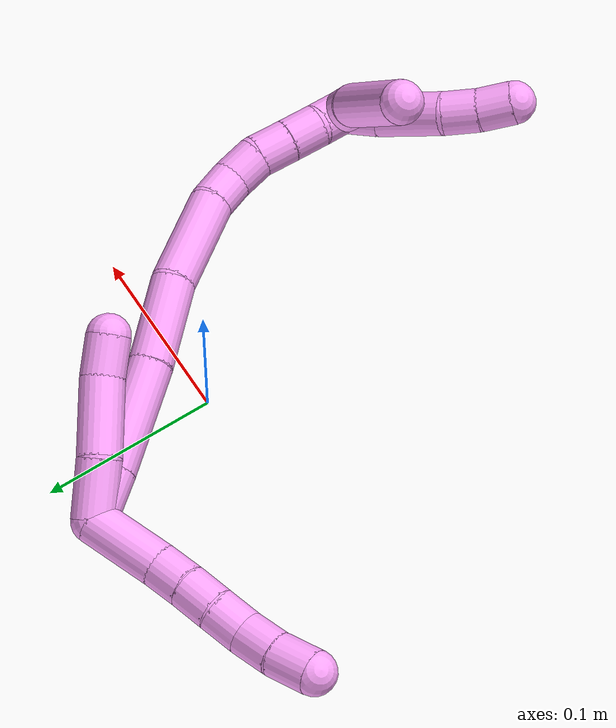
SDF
<sdf version="1.7">
 <world name="default">
  <model name="4">
   <static>0</static>
   <link name="4">
    <collision name="collision-cylinder-e_1_2_8">
     <pose>-0.018552 -0.007982 0.008276 0.767268 -1.01596 -0.442071</pose>
     <geometry><cylinder><radius>0.0125</radius><length>0.043652</length></cylinder></geometry>
     <surface>
      <friction><ode><mu>1.16</mu><mu2>1.16</mu2><slip1>0</slip1><slip2>0</slip2></ode></friction>
      <contact><ode><kp>1e+06</kp><kd>1</kd><max_vel>0</max_vel><min_depth>0.001</min_depth></ode></contact>
     </surface>
    </collision>
    <visual name="visual-cylinder-e_1_2_8">
     <pose>-0.018552 -0.007982 0.008276 0.767268 -1.01596 -0.442071</pose>
     <geometry><cylinder><radius>0.0125</radius><length>0.043652</length></cylinder></geometry>
     <material><ambient>1 0.65098 0.996078 1</ambient></material>
    </visual>
    <collision name="collision-cylinder-e_2_8_9">
     <pose>-0.045405 -0.018593 0.021738 0.469392 -0.959811 -0.247628</pose>
     <geometry><cylinder><radius>0.0125</radius><length>0.02027</length></cylinder></geometry>
     <surface>
      <friction><ode><mu>1.16</mu><mu2>1.16</mu2><slip1>0</slip1><slip2>0</slip2></ode></friction>
      <contact><ode><kp>1e+06</kp><kd>1</kd><max_vel>0</max_vel><min_depth>0.001</min_depth></ode></contact>
     </surface>
    </collision>
    <visual name="visual-cylinder-e_2_8_9">
     <pose>-0.045405 -0.018593 0.021738 0.469392 -0.959811 -0.247628</pose>
     <geometry><cylinder><radius>0.0125</radius><length>0.02027</length></cylinder></geometry>
     <material><ambient>1 0.65098 0.996078 1</ambient></material>
    </visual>
    <collision name="collision-cylinder-e_3_9_10">
     <pose>-0.062344 -0.02381 0.031508 0.513701 -1.02344 -0.292907</pose>
     <geometry><cylinder><radius>0.0125</radius><length>0.02023</length></cylinder></geometry>
     <surface>
      <friction><ode><mu>1.16</mu><mu2>1.16</mu2><slip1>0</slip1><slip2>0</slip2></ode></friction>
      <contact><ode><kp>1e+06</kp><kd>1</kd><max_vel>0</max_vel><min_depth>0.001</min_depth></ode></contact>
     </surface>
    </collision>
    <visual name="visual-cylinder-e_3_9_10">
     <pose>-0.062344 -0.02381 0.031508 0.513701 -1.02344 -0.292907</pose>
     <geometry><cylinder><radius>0.0125</radius><length>0.02023</length></cylinder></geometry>
     <material><ambient>1 0.65098 0.996078 1</ambient></material>
    </visual>
    <collision name="collision-cylinder-e_4_10_11">
     <pose>-0.079951 -0.029507 0.039702 0.711345 -1.08256 -0.439423</pose>
     <geometry><cylinder><radius>0.0125</radius><length>0.020312</length></cylinder></geometry>
     <surface>
      <friction><ode><mu>1.16</mu><mu2>1.16</mu2><slip1>0</slip1><slip2>0</slip2></ode></friction>
      <contact><ode><kp>1e+06</kp><kd>1</kd><max_vel>0</max_vel><min_depth>0.001</min_depth></ode></contact>
     </surface>
    </collision>
    <visual name="visual-cylinder-e_4_10_11">
     <pose>-0.079951 -0.029507 0.039702 0.711345 -1.08256 -0.439423</pose>
     <geometry><cylinder><radius>0.0125</radius><length>0.020312</length></cylinder></geometry>
     <material><ambient>1 0.65098 0.996078 1</ambient></material>
    </visual>
    <collision name="collision-cylinder-e_5_11_12">
     <pose>-0.097398 -0.035386 0.049879 0.398901 -0.871661 -0.187717</pose>
     <geometry><cylinder><radius>0.0125</radius><length>0.022154</length></cylinder></geometry>
     <surface>
      <friction><ode><mu>1.16</mu><mu2>1.16</mu2><slip1>0</slip1><slip2>0</slip2></ode></friction>
      <contact><ode><kp>1e+06</kp><kd>1</kd><max_vel>0</max_vel><min_depth>0.001</min_depth></ode></contact>
     </surface>
    </collision>
    <visual name="visual-cylinder-e_5_11_12">
     <pose>-0.097398 -0.035386 0.049879 0.398901 -0.871661 -0.187717</pose>
     <geometry><cylinder><radius>0.0125</radius><length>0.022154</length></cylinder></geometry>
     <material><ambient>1 0.65098 0.996078 1</ambient></material>
    </visual>
    <collision name="collision-cylinder-e_6_12_6">
     <pose>-0.11413 -0.042366 0.063577 0.533617 -0.783809 -0.224968</pose>
     <geometry><cylinder><radius>0.0125</radius><length>0.023382</length></cylinder></geometry>
     <surface>
      <friction><ode><mu>1.16</mu><mu2>1.16</mu2><slip1>0</slip1><slip2>0</slip2></ode></friction>
      <contact><ode><kp>1e+06</kp><kd>1</kd><max_vel>0</max_vel><min_depth>0.001</min_depth></ode></contact>
     </surface>
    </collision>
    <visual name="visual-cylinder-e_6_12_6">
     <pose>-0.11413 -0.042366 0.063577 0.533617 -0.783809 -0.224968</pose>
     <geometry><cylinder><radius>0.0125</radius><length>0.023382</length></cylinder></geometry>
     <material><ambient>1 0.65098 0.996078 1</ambient></material>
    </visual>
    <collision name="collision-cylinder-e_1_2_13">
     <pose>0.013942 -0.008362 0.002988 1.22766 1.00365 0.73783</pose>
     <geometry><cylinder><radius>0.0125</radius><length>0.033059</length></cylinder></geometry>
     <surface>
      <friction><ode><mu>1.16</mu><mu2>1.16</mu2><slip1>0</slip1><slip2>0</slip2></ode></friction>
      <contact><ode><kp>1e+06</kp><kd>1</kd><max_vel>0</max_vel><min_depth>0.001</min_depth></ode></contact>
     </surface>
    </collision>
    <visual name="visual-cylinder-e_1_2_13">
     <pose>0.013942 -0.008362 0.002988 1.22766 1.00365 0.73783</pose>
     <geometry><cylinder><radius>0.0125</radius><length>0.033059</length></cylinder></geometry>
     <material><ambient>1 0.65098 0.996078 1</ambient></material>
    </visual>
    <collision name="collision-cylinder-e_2_13_14">
     <pose>0.046835 -0.02777 0.005819 1.58495 1.04305 1.05532</pose>
     <geometry><cylinder><radius>0.0125</radius><length>0.043872</length></cylinder></geometry>
     <surface>
      <friction><ode><mu>1.16</mu><mu2>1.16</mu2><slip1>0</slip1><slip2>0</slip2></ode></friction>
      <contact><ode><kp>1e+06</kp><kd>1</kd><max_vel>0</max_vel><min_depth>0.001</min_depth></ode></contact>
     </surface>
    </collision>
    <visual name="visual-cylinder-e_2_13_14">
     <pose>0.046835 -0.02777 0.005819 1.58495 1.04305 1.05532</pose>
     <geometry><cylinder><radius>0.0125</radius><length>0.043872</length></cylinder></geometry>
     <material><ambient>1 0.65098 0.996078 1</ambient></material>
    </visual>
    <collision name="collision-cylinder-e_3_14_5">
     <pose>0.0752 -0.045257 0.007374 1.31115 0.954733 0.757214</pose>
     <geometry><cylinder><radius>0.0125</radius><length>0.023069</length></cylinder></geometry>
     <surface>
      <friction><ode><mu>1.16</mu><mu2>1.16</mu2><slip1>0</slip1><slip2>0</slip2></ode></friction>
      <contact><ode><kp>1e+06</kp><kd>1</kd><max_vel>0</max_vel><min_depth>0.001</min_depth></ode></contact>
     </surface>
    </collision>
    <visual name="visual-cylinder-e_3_14_5">
     <pose>0.0752 -0.045257 0.007374 1.31115 0.954733 0.757214</pose>
     <geometry><cylinder><radius>0.0125</radius><length>0.023069</length></cylinder></geometry>
     <material><ambient>1 0.65098 0.996078 1</ambient></material>
    </visual>
    <collision name="collision-cylinder-e_1_2_15">
     <pose>0.009557 -0.011566 -0.001199 1.67406 0.687963 0.756296</pose>
     <geometry><cylinder><radius>0.0125</radius><length>0.030102</length></cylinder></geometry>
     <surface>
      <friction><ode><mu>1.16</mu><mu2>1.16</mu2><slip1>0</slip1><slip2>0</slip2></ode></friction>
      <contact><ode><kp>1e+06</kp><kd>1</kd><max_vel>0</max_vel><min_depth>0.001</min_depth></ode></contact>
     </surface>
    </collision>
    <visual name="visual-cylinder-e_1_2_15">
     <pose>0.009557 -0.011566 -0.001199 1.67406 0.687963 0.756296</pose>
     <geometry><cylinder><radius>0.0125</radius><length>0.030102</length></cylinder></geometry>
     <material><ambient>1 0.65098 0.996078 1</ambient></material>
    </visual>
    <collision name="collision-cylinder-e_2_15_16">
     <pose>0.040429 -0.046807 -0.004039 1.64002 0.731778 0.779267</pose>
     <geometry><cylinder><radius>0.0125</radius><length>0.0638</length></cylinder></geometry>
     <surface>
      <friction><ode><mu>1.16</mu><mu2>1.16</mu2><slip1>0</slip1><slip2>0</slip2></ode></friction>
      <contact><ode><kp>1e+06</kp><kd>1</kd><max_vel>0</max_vel><min_depth>0.001</min_depth></ode></contact>
     </surface>
    </collision>
    <visual name="visual-cylinder-e_2_15_16">
     <pose>0.040429 -0.046807 -0.004039 1.64002 0.731778 0.779267</pose>
     <geometry><cylinder><radius>0.0125</radius><length>0.0638</length></cylinder></geometry>
     <material><ambient>1 0.65098 0.996078 1</ambient></material>
    </visual>
    <collision name="collision-cylinder-e_3_16_17">
     <pose>0.079609 -0.087979 -0.007869 1.69524 0.791962 0.884642</pose>
     <geometry><cylinder><radius>0.0125</radius><length>0.050201</length></cylinder></geometry>
     <surface>
      <friction><ode><mu>1.16</mu><mu2>1.16</mu2><slip1>0</slip1><slip2>0</slip2></ode></friction>
      <contact><ode><kp>1e+06</kp><kd>1</kd><max_vel>0</max_vel><min_depth>0.001</min_depth></ode></contact>
     </surface>
    </collision>
    <visual name="visual-cylinder-e_3_16_17">
     <pose>0.079609 -0.087979 -0.007869 1.69524 0.791962 0.884642</pose>
     <geometry><cylinder><radius>0.0125</radius><length>0.050201</length></cylinder></geometry>
     <material><ambient>1 0.65098 0.996078 1</ambient></material>
    </visual>
    <collision name="collision-cylinder-e_4_17_18">
     <pose>0.113224 -0.12778 -0.01453 1.76869 0.605556 0.728459</pose>
     <geometry><cylinder><radius>0.0125</radius><length>0.05534</length></cylinder></geometry>
     <surface>
      <friction><ode><mu>1.16</mu><mu2>1.16</mu2><slip1>0</slip1><slip2>0</slip2></ode></friction>
      <contact><ode><kp>1e+06</kp><kd>1</kd><max_vel>0</max_vel><min_depth>0.001</min_depth></ode></contact>
     </surface>
    </collision>
    <visual name="visual-cylinder-e_4_17_18">
     <pose>0.113224 -0.12778 -0.01453 1.76869 0.605556 0.728459</pose>
     <geometry><cylinder><radius>0.0125</radius><length>0.05534</length></cylinder></geometry>
     <material><ambient>1 0.65098 0.996078 1</ambient></material>
    </visual>
    <collision name="collision-cylinder-e_5_18_19">
     <pose>0.1327 -0.159399 -0.020739 1.75511 0.3747 0.448682</pose>
     <geometry><cylinder><radius>0.0125</radius><length>0.020361</length></cylinder></geometry>
     <surface>
      <friction><ode><mu>1.16</mu><mu2>1.16</mu2><slip1>0</slip1><slip2>0</slip2></ode></friction>
      <contact><ode><kp>1e+06</kp><kd>1</kd><max_vel>0</max_vel><min_depth>0.001</min_depth></ode></contact>
     </surface>
    </collision>
    <visual name="visual-cylinder-e_5_18_19">
     <pose>0.1327 -0.159399 -0.020739 1.75511 0.3747 0.448682</pose>
     <geometry><cylinder><radius>0.0125</radius><length>0.020361</length></cylinder></geometry>
     <material><ambient>1 0.65098 0.996078 1</ambient></material>
    </visual>
    <collision name="collision-cylinder-e_6_19_20">
     <pose>0.139232 -0.178199 -0.020994 1.4159 0.284376 0.243854</pose>
     <geometry><cylinder><radius>0.0125</radius><length>0.020005</length></cylinder></geometry>
     <surface>
      <friction><ode><mu>1.16</mu><mu2>1.16</mu2><slip1>0</slip1><slip2>0</slip2></ode></friction>
      <contact><ode><kp>1e+06</kp><kd>1</kd><max_vel>0</max_vel><min_depth>0.001</min_depth></ode></contact>
     </surface>
    </collision>
    <visual name="visual-cylinder-e_6_19_20">
     <pose>0.139232 -0.178199 -0.020994 1.4159 0.284376 0.243854</pose>
     <geometry><cylinder><radius>0.0125</radius><length>0.020005</length></cylinder></geometry>
     <material><ambient>1 0.65098 0.996078 1</ambient></material>
    </visual>
    <collision name="collision-cylinder-e_7_20_21">
     <pose>0.142273 -0.197697 -0.018288 1.44907 0.023223 0.020555</pose>
     <geometry><cylinder><radius>0.0125</radius><length>0.020181</length></cylinder></geometry>
     <surface>
      <friction><ode><mu>1.16</mu><mu2>1.16</mu2><slip1>0</slip1><slip2>0</slip2></ode></friction>
      <contact><ode><kp>1e+06</kp><kd>1</kd><max_vel>0</max_vel><min_depth>0.001</min_depth></ode></contact>
     </surface>
    </collision>
    <visual name="visual-cylinder-e_7_20_21">
     <pose>0.142273 -0.197697 -0.018288 1.44907 0.023223 0.020555</pose>
     <geometry><cylinder><radius>0.0125</radius><length>0.020181</length></cylinder></geometry>
     <material><ambient>1 0.65098 0.996078 1</ambient></material>
    </visual>
    <collision name="collision-cylinder-e_8_21_22">
     <pose>0.142854 -0.217669 -0.01616 1.48032 0.034643 0.031643</pose>
     <geometry><cylinder><radius>0.0125</radius><length>0.020011</length></cylinder></geometry>
     <surface>
      <friction><ode><mu>1.16</mu><mu2>1.16</mu2><slip1>0</slip1><slip2>0</slip2></ode></friction>
      <contact><ode><kp>1e+06</kp><kd>1</kd><max_vel>0</max_vel><min_depth>0.001</min_depth></ode></contact>
     </surface>
    </collision>
    <visual name="visual-cylinder-e_8_21_22">
     <pose>0.142854 -0.217669 -0.01616 1.48032 0.034643 0.031643</pose>
     <geometry><cylinder><radius>0.0125</radius><length>0.020011</length></cylinder></geometry>
     <material><ambient>1 0.65098 0.996078 1</ambient></material>
    </visual>
    <collision name="collision-cylinder-e_9_22_1">
     <pose>0.143913 -0.237501 -0.016676 1.71358 0.071348 0.082327</pose>
     <geometry><cylinder><radius>0.0125</radius><length>0.020001</length></cylinder></geometry>
     <surface>
      <friction><ode><mu>1.16</mu><mu2>1.16</mu2><slip1>0</slip1><slip2>0</slip2></ode></friction>
      <contact><ode><kp>1e+06</kp><kd>1</kd><max_vel>0</max_vel><min_depth>0.001</min_depth></ode></contact>
     </surface>
    </collision>
    <visual name="visual-cylinder-e_9_22_1">
     <pose>0.143913 -0.237501 -0.016676 1.71358 0.071348 0.082327</pose>
     <geometry><cylinder><radius>0.0125</radius><length>0.020001</length></cylinder></geometry>
     <material><ambient>1 0.65098 0.996078 1</ambient></material>
    </visual>
    <collision name="collision-cylinder-e_1_1_23">
     <pose>0.138992 -0.25489 -0.014032 1.07518 -0.583004 -0.35401</pose>
     <geometry><cylinder><radius>0.0125</radius><length>0.020467</length></cylinder></geometry>
     <surface>
      <friction><ode><mu>1.16</mu><mu2>1.16</mu2><slip1>0</slip1><slip2>0</slip2></ode></friction>
      <contact><ode><kp>1e+06</kp><kd>1</kd><max_vel>0</max_vel><min_depth>0.001</min_depth></ode></contact>
     </surface>
    </collision>
    <visual name="visual-cylinder-e_1_1_23">
     <pose>0.138992 -0.25489 -0.014032 1.07518 -0.583004 -0.35401</pose>
     <geometry><cylinder><radius>0.0125</radius><length>0.020467</length></cylinder></geometry>
     <material><ambient>1 0.65098 0.996078 1</ambient></material>
    </visual>
    <collision name="collision-cylinder-e_2_23_24">
     <pose>0.124556 -0.27457 0.002361 0.778672 -0.470138 -0.195892</pose>
     <geometry><cylinder><radius>0.0125</radius><length>0.038859</length></cylinder></geometry>
     <surface>
      <friction><ode><mu>1.16</mu><mu2>1.16</mu2><slip1>0</slip1><slip2>0</slip2></ode></friction>
      <contact><ode><kp>1e+06</kp><kd>1</kd><max_vel>0</max_vel><min_depth>0.001</min_depth></ode></contact>
     </surface>
    </collision>
    <visual name="visual-cylinder-e_2_23_24">
     <pose>0.124556 -0.27457 0.002361 0.778672 -0.470138 -0.195892</pose>
     <geometry><cylinder><radius>0.0125</radius><length>0.038859</length></cylinder></geometry>
     <material><ambient>1 0.65098 0.996078 1</ambient></material>
    </visual>
    <collision name="collision-cylinder-e_3_24_25">
     <pose>0.111724 -0.294736 0.019786 1.00374 -0.401803 -0.222574</pose>
     <geometry><cylinder><radius>0.0125</radius><length>0.020611</length></cylinder></geometry>
     <surface>
      <friction><ode><mu>1.16</mu><mu2>1.16</mu2><slip1>0</slip1><slip2>0</slip2></ode></friction>
      <contact><ode><kp>1e+06</kp><kd>1</kd><max_vel>0</max_vel><min_depth>0.001</min_depth></ode></contact>
     </surface>
    </collision>
    <visual name="visual-cylinder-e_3_24_25">
     <pose>0.111724 -0.294736 0.019786 1.00374 -0.401803 -0.222574</pose>
     <geometry><cylinder><radius>0.0125</radius><length>0.020611</length></cylinder></geometry>
     <material><ambient>1 0.65098 0.996078 1</ambient></material>
    </visual>
    <collision name="collision-cylinder-e_4_25_4">
     <pose>0.104928 -0.310712 0.0303 0.973961 -0.279362 -0.148622</pose>
     <geometry><cylinder><radius>0.0125</radius><length>0.020062</length></cylinder></geometry>
     <surface>
      <friction><ode><mu>1.16</mu><mu2>1.16</mu2><slip1>0</slip1><slip2>0</slip2></ode></friction>
      <contact><ode><kp>1e+06</kp><kd>1</kd><max_vel>0</max_vel><min_depth>0.001</min_depth></ode></contact>
     </surface>
    </collision>
    <visual name="visual-cylinder-e_4_25_4">
     <pose>0.104928 -0.310712 0.0303 0.973961 -0.279362 -0.148622</pose>
     <geometry><cylinder><radius>0.0125</radius><length>0.020062</length></cylinder></geometry>
     <material><ambient>1 0.65098 0.996078 1</ambient></material>
    </visual>
    <collision name="collision-cylinder-e_1_1_26">
     <pose>0.143071 -0.243946 -0.002564 -0.217247 -0.09746 0.010637</pose>
     <geometry><cylinder><radius>0.0125</radius><length>0.031961</length></cylinder></geometry>
     <surface>
      <friction><ode><mu>1.16</mu><mu2>1.16</mu2><slip1>0</slip1><slip2>0</slip2></ode></friction>
      <contact><ode><kp>1e+06</kp><kd>1</kd><max_vel>0</max_vel><min_depth>0.001</min_depth></ode></contact>
     </surface>
    </collision>
    <visual name="visual-cylinder-e_1_1_26">
     <pose>0.143071 -0.243946 -0.002564 -0.217247 -0.09746 0.010637</pose>
     <geometry><cylinder><radius>0.0125</radius><length>0.031961</length></cylinder></geometry>
     <material><ambient>1 0.65098 0.996078 1</ambient></material>
    </visual>
    <collision name="collision-cylinder-e_2_26_3">
     <pose>0.132829 -0.238375 0.045788 -0.065205 -0.258207 0.008468</pose>
     <geometry><cylinder><radius>0.0125</radius><length>0.068039</length></cylinder></geometry>
     <surface>
      <friction><ode><mu>1.16</mu><mu2>1.16</mu2><slip1>0</slip1><slip2>0</slip2></ode></friction>
      <contact><ode><kp>1e+06</kp><kd>1</kd><max_vel>0</max_vel><min_depth>0.001</min_depth></ode></contact>
     </surface>
    </collision>
    <visual name="visual-cylinder-e_2_26_3">
     <pose>0.132829 -0.238375 0.045788 -0.065205 -0.258207 0.008468</pose>
     <geometry><cylinder><radius>0.0125</radius><length>0.068039</length></cylinder></geometry>
     <material><ambient>1 0.65098 0.996078 1</ambient></material>
    </visual>
    <collision name="collision-sphere-3">
     <pose>0.124143 -0.236232 0.07861 0 -0 0</pose>
     <geometry><sphere><radius>0.0125</radius></sphere></geometry>
     <surface>
      <friction><ode><mu>1.16</mu><mu2>1.16</mu2><slip1>0</slip1><slip2>0</slip2></ode></friction>
      <contact><ode><kp>1e+06</kp><kd>1</kd><max_vel>0</max_vel><min_depth>0.001</min_depth></ode></contact>
     </surface>
    </collision>
    <visual name="visual-sphere-3">
     <pose>0.124143 -0.236232 0.07861 0 -0 0</pose>
     <geometry><sphere><radius>0.0125</radius></sphere></geometry>
     <material><ambient>1 0.65098 0.996078 1</ambient></material>
    </visual>
    <collision name="collision-sphere-26">
     <pose>0.141516 -0.240518 0.012967 0 -0 0</pose>
     <geometry><sphere><radius>0.0125</radius></sphere></geometry>
     <surface>
      <friction><ode><mu>1.16</mu><mu2>1.16</mu2><slip1>0</slip1><slip2>0</slip2></ode></friction>
      <contact><ode><kp>1e+06</kp><kd>1</kd><max_vel>0</max_vel><min_depth>0.001</min_depth></ode></contact>
     </surface>
    </collision>
    <visual name="visual-sphere-26">
     <pose>0.141516 -0.240518 0.012967 0 -0 0</pose>
     <geometry><sphere><radius>0.0125</radius></sphere></geometry>
     <material><ambient>1 0.65098 0.996078 1</ambient></material>
    </visual>
    <collision name="collision-sphere-4">
     <pose>0.102162 -0.318687 0.035719 0 -0 0</pose>
     <geometry><sphere><radius>0.0125</radius></sphere></geometry>
     <surface>
      <friction><ode><mu>1.16</mu><mu2>1.16</mu2><slip1>0</slip1><slip2>0</slip2></ode></friction>
      <contact><ode><kp>1e+06</kp><kd>1</kd><max_vel>0</max_vel><min_depth>0.001</min_depth></ode></contact>
     </surface>
    </collision>
    <visual name="visual-sphere-4">
     <pose>0.102162 -0.318687 0.035719 0 -0 0</pose>
     <geometry><sphere><radius>0.0125</radius></sphere></geometry>
     <material><ambient>1 0.65098 0.996078 1</ambient></material>
    </visual>
    <collision name="collision-sphere-25">
     <pose>0.107694 -0.302737 0.024881 0 -0 0</pose>
     <geometry><sphere><radius>0.0125</radius></sphere></geometry>
     <surface>
      <friction><ode><mu>1.16</mu><mu2>1.16</mu2><slip1>0</slip1><slip2>0</slip2></ode></friction>
      <contact><ode><kp>1e+06</kp><kd>1</kd><max_vel>0</max_vel><min_depth>0.001</min_depth></ode></contact>
     </surface>
    </collision>
    <visual name="visual-sphere-25">
     <pose>0.107694 -0.302737 0.024881 0 -0 0</pose>
     <geometry><sphere><radius>0.0125</radius></sphere></geometry>
     <material><ambient>1 0.65098 0.996078 1</ambient></material>
    </visual>
    <collision name="collision-sphere-24">
     <pose>0.115755 -0.286736 0.014691 0 -0 0</pose>
     <geometry><sphere><radius>0.0125</radius></sphere></geometry>
     <surface>
      <friction><ode><mu>1.16</mu><mu2>1.16</mu2><slip1>0</slip1><slip2>0</slip2></ode></friction>
      <contact><ode><kp>1e+06</kp><kd>1</kd><max_vel>0</max_vel><min_depth>0.001</min_depth></ode></contact>
     </surface>
    </collision>
    <visual name="visual-sphere-24">
     <pose>0.115755 -0.286736 0.014691 0 -0 0</pose>
     <geometry><sphere><radius>0.0125</radius></sphere></geometry>
     <material><ambient>1 0.65098 0.996078 1</ambient></material>
    </visual>
    <collision name="collision-sphere-23">
     <pose>0.133358 -0.262405 -0.009969 0 -0 0</pose>
     <geometry><sphere><radius>0.0125</radius></sphere></geometry>
     <surface>
      <friction><ode><mu>1.16</mu><mu2>1.16</mu2><slip1>0</slip1><slip2>0</slip2></ode></friction>
      <contact><ode><kp>1e+06</kp><kd>1</kd><max_vel>0</max_vel><min_depth>0.001</min_depth></ode></contact>
     </surface>
    </collision>
    <visual name="visual-sphere-23">
     <pose>0.133358 -0.262405 -0.009969 0 -0 0</pose>
     <geometry><sphere><radius>0.0125</radius></sphere></geometry>
     <material><ambient>1 0.65098 0.996078 1</ambient></material>
    </visual>
    <collision name="collision-sphere-1">
     <pose>0.144626 -0.247374 -0.018095 0 -0 0</pose>
     <geometry><sphere><radius>0.0125</radius></sphere></geometry>
     <surface>
      <friction><ode><mu>1.16</mu><mu2>1.16</mu2><slip1>0</slip1><slip2>0</slip2></ode></friction>
      <contact><ode><kp>1e+06</kp><kd>1</kd><max_vel>0</max_vel><min_depth>0.001</min_depth></ode></contact>
     </surface>
    </collision>
    <visual name="visual-sphere-1">
     <pose>0.144626 -0.247374 -0.018095 0 -0 0</pose>
     <geometry><sphere><radius>0.0125</radius></sphere></geometry>
     <material><ambient>1 0.65098 0.996078 1</ambient></material>
    </visual>
    <collision name="collision-sphere-22">
     <pose>0.1432 -0.227627 -0.015256 0 -0 0</pose>
     <geometry><sphere><radius>0.0125</radius></sphere></geometry>
     <surface>
      <friction><ode><mu>1.16</mu><mu2>1.16</mu2><slip1>0</slip1><slip2>0</slip2></ode></friction>
      <contact><ode><kp>1e+06</kp><kd>1</kd><max_vel>0</max_vel><min_depth>0.001</min_depth></ode></contact>
     </surface>
    </collision>
    <visual name="visual-sphere-22">
     <pose>0.1432 -0.227627 -0.015256 0 -0 0</pose>
     <geometry><sphere><radius>0.0125</radius></sphere></geometry>
     <material><ambient>1 0.65098 0.996078 1</ambient></material>
    </visual>
    <collision name="collision-sphere-21">
     <pose>0.142507 -0.20771 -0.017063 0 -0 0</pose>
     <geometry><sphere><radius>0.0125</radius></sphere></geometry>
     <surface>
      <friction><ode><mu>1.16</mu><mu2>1.16</mu2><slip1>0</slip1><slip2>0</slip2></ode></friction>
      <contact><ode><kp>1e+06</kp><kd>1</kd><max_vel>0</max_vel><min_depth>0.001</min_depth></ode></contact>
     </surface>
    </collision>
    <visual name="visual-sphere-21">
     <pose>0.142507 -0.20771 -0.017063 0 -0 0</pose>
     <geometry><sphere><radius>0.0125</radius></sphere></geometry>
     <material><ambient>1 0.65098 0.996078 1</ambient></material>
    </visual>
    <collision name="collision-sphere-12">
     <pose>-0.105877 -0.038155 0.056448 0 -0 0</pose>
     <geometry><sphere><radius>0.0125</radius></sphere></geometry>
     <surface>
      <friction><ode><mu>1.16</mu><mu2>1.16</mu2><slip1>0</slip1><slip2>0</slip2></ode></friction>
      <contact><ode><kp>1e+06</kp><kd>1</kd><max_vel>0</max_vel><min_depth>0.001</min_depth></ode></contact>
     </surface>
    </collision>
    <visual name="visual-sphere-12">
     <pose>-0.105877 -0.038155 0.056448 0 -0 0</pose>
     <geometry><sphere><radius>0.0125</radius></sphere></geometry>
     <material><ambient>1 0.65098 0.996078 1</ambient></material>
    </visual>
    <collision name="collision-sphere-11">
     <pose>-0.08892 -0.032617 0.04331 0 -0 0</pose>
     <geometry><sphere><radius>0.0125</radius></sphere></geometry>
     <surface>
      <friction><ode><mu>1.16</mu><mu2>1.16</mu2><slip1>0</slip1><slip2>0</slip2></ode></friction>
      <contact><ode><kp>1e+06</kp><kd>1</kd><max_vel>0</max_vel><min_depth>0.001</min_depth></ode></contact>
     </surface>
    </collision>
    <visual name="visual-sphere-11">
     <pose>-0.08892 -0.032617 0.04331 0 -0 0</pose>
     <geometry><sphere><radius>0.0125</radius></sphere></geometry>
     <material><ambient>1 0.65098 0.996078 1</ambient></material>
    </visual>
    <collision name="collision-sphere-10">
     <pose>-0.070981 -0.026397 0.036093 0 -0 0</pose>
     <geometry><sphere><radius>0.0125</radius></sphere></geometry>
     <surface>
      <friction><ode><mu>1.16</mu><mu2>1.16</mu2><slip1>0</slip1><slip2>0</slip2></ode></friction>
      <contact><ode><kp>1e+06</kp><kd>1</kd><max_vel>0</max_vel><min_depth>0.001</min_depth></ode></contact>
     </surface>
    </collision>
    <visual name="visual-sphere-10">
     <pose>-0.070981 -0.026397 0.036093 0 -0 0</pose>
     <geometry><sphere><radius>0.0125</radius></sphere></geometry>
     <material><ambient>1 0.65098 0.996078 1</ambient></material>
    </visual>
    <collision name="collision-sphere-9">
     <pose>-0.053706 -0.021223 0.026923 0 -0 0</pose>
     <geometry><sphere><radius>0.0125</radius></sphere></geometry>
     <surface>
      <friction><ode><mu>1.16</mu><mu2>1.16</mu2><slip1>0</slip1><slip2>0</slip2></ode></friction>
      <contact><ode><kp>1e+06</kp><kd>1</kd><max_vel>0</max_vel><min_depth>0.001</min_depth></ode></contact>
     </surface>
    </collision>
    <visual name="visual-sphere-9">
     <pose>-0.053706 -0.021223 0.026923 0 -0 0</pose>
     <geometry><sphere><radius>0.0125</radius></sphere></geometry>
     <material><ambient>1 0.65098 0.996078 1</ambient></material>
    </visual>
    <collision name="collision-sphere-2">
     <geometry><sphere><radius>0.0125</radius></sphere></geometry>
     <surface>
      <friction><ode><mu>1.16</mu><mu2>1.16</mu2><slip1>0</slip1><slip2>0</slip2></ode></friction>
      <contact><ode><kp>1e+06</kp><kd>1</kd><max_vel>0</max_vel><min_depth>0.001</min_depth></ode></contact>
     </surface>
    </collision>
    <visual name="visual-sphere-2">
     <geometry><sphere><radius>0.0125</radius></sphere></geometry>
     <material><ambient>1 0.65098 0.996078 1</ambient></material>
    </visual>
    <collision name="collision-sphere-19">
     <pose>0.136426 -0.168713 -0.022476 0 -0 0</pose>
     <geometry><sphere><radius>0.0125</radius></sphere></geometry>
     <surface>
      <friction><ode><mu>1.16</mu><mu2>1.16</mu2><slip1>0</slip1><slip2>0</slip2></ode></friction>
      <contact><ode><kp>1e+06</kp><kd>1</kd><max_vel>0</max_vel><min_depth>0.001</min_depth></ode></contact>
     </surface>
    </collision>
    <visual name="visual-sphere-19">
     <pose>0.136426 -0.168713 -0.022476 0 -0 0</pose>
     <geometry><sphere><radius>0.0125</radius></sphere></geometry>
     <material><ambient>1 0.65098 0.996078 1</ambient></material>
    </visual>
    <collision name="collision-sphere-8">
     <pose>-0.037104 -0.015963 0.016553 0 -0 0</pose>
     <geometry><sphere><radius>0.0125</radius></sphere></geometry>
     <surface>
      <friction><ode><mu>1.16</mu><mu2>1.16</mu2><slip1>0</slip1><slip2>0</slip2></ode></friction>
      <contact><ode><kp>1e+06</kp><kd>1</kd><max_vel>0</max_vel><min_depth>0.001</min_depth></ode></contact>
     </surface>
    </collision>
    <visual name="visual-sphere-8">
     <pose>-0.037104 -0.015963 0.016553 0 -0 0</pose>
     <geometry><sphere><radius>0.0125</radius></sphere></geometry>
     <material><ambient>1 0.65098 0.996078 1</ambient></material>
    </visual>
    <collision name="collision-sphere-6">
     <pose>-0.122384 -0.046578 0.070705 0 -0 0</pose>
     <geometry><sphere><radius>0.0125</radius></sphere></geometry>
     <surface>
      <friction><ode><mu>1.16</mu><mu2>1.16</mu2><slip1>0</slip1><slip2>0</slip2></ode></friction>
      <contact><ode><kp>1e+06</kp><kd>1</kd><max_vel>0</max_vel><min_depth>0.001</min_depth></ode></contact>
     </surface>
    </collision>
    <visual name="visual-sphere-6">
     <pose>-0.122384 -0.046578 0.070705 0 -0 0</pose>
     <geometry><sphere><radius>0.0125</radius></sphere></geometry>
     <material><ambient>1 0.65098 0.996078 1</ambient></material>
    </visual>
    <collision name="collision-sphere-13">
     <pose>0.027883 -0.016725 0.005975 0 -0 0</pose>
     <geometry><sphere><radius>0.0125</radius></sphere></geometry>
     <surface>
      <friction><ode><mu>1.16</mu><mu2>1.16</mu2><slip1>0</slip1><slip2>0</slip2></ode></friction>
      <contact><ode><kp>1e+06</kp><kd>1</kd><max_vel>0</max_vel><min_depth>0.001</min_depth></ode></contact>
     </surface>
    </collision>
    <visual name="visual-sphere-13">
     <pose>0.027883 -0.016725 0.005975 0 -0 0</pose>
     <geometry><sphere><radius>0.0125</radius></sphere></geometry>
     <material><ambient>1 0.65098 0.996078 1</ambient></material>
    </visual>
    <collision name="collision-sphere-14">
     <pose>0.065786 -0.038816 0.005663 0 -0 0</pose>
     <geometry><sphere><radius>0.0125</radius></sphere></geometry>
     <surface>
      <friction><ode><mu>1.16</mu><mu2>1.16</mu2><slip1>0</slip1><slip2>0</slip2></ode></friction>
      <contact><ode><kp>1e+06</kp><kd>1</kd><max_vel>0</max_vel><min_depth>0.001</min_depth></ode></contact>
     </surface>
    </collision>
    <visual name="visual-sphere-14">
     <pose>0.065786 -0.038816 0.005663 0 -0 0</pose>
     <geometry><sphere><radius>0.0125</radius></sphere></geometry>
     <material><ambient>1 0.65098 0.996078 1</ambient></material>
    </visual>
    <collision name="collision-sphere-5">
     <pose>0.084614 -0.051699 0.009085 0 -0 0</pose>
     <geometry><sphere><radius>0.0125</radius></sphere></geometry>
     <surface>
      <friction><ode><mu>1.16</mu><mu2>1.16</mu2><slip1>0</slip1><slip2>0</slip2></ode></friction>
      <contact><ode><kp>1e+06</kp><kd>1</kd><max_vel>0</max_vel><min_depth>0.001</min_depth></ode></contact>
     </surface>
    </collision>
    <visual name="visual-sphere-5">
     <pose>0.084614 -0.051699 0.009085 0 -0 0</pose>
     <geometry><sphere><radius>0.0125</radius></sphere></geometry>
     <material><ambient>1 0.65098 0.996078 1</ambient></material>
    </visual>
    <collision name="collision-sphere-15">
     <pose>0.019114 -0.023131 -0.002397 0 -0 0</pose>
     <geometry><sphere><radius>0.0125</radius></sphere></geometry>
     <surface>
      <friction><ode><mu>1.16</mu><mu2>1.16</mu2><slip1>0</slip1><slip2>0</slip2></ode></friction>
      <contact><ode><kp>1e+06</kp><kd>1</kd><max_vel>0</max_vel><min_depth>0.001</min_depth></ode></contact>
     </surface>
    </collision>
    <visual name="visual-sphere-15">
     <pose>0.019114 -0.023131 -0.002397 0 -0 0</pose>
     <geometry><sphere><radius>0.0125</radius></sphere></geometry>
     <material><ambient>1 0.65098 0.996078 1</ambient></material>
    </visual>
    <collision name="collision-sphere-16">
     <pose>0.061744 -0.070484 -0.00568 0 -0 0</pose>
     <geometry><sphere><radius>0.0125</radius></sphere></geometry>
     <surface>
      <friction><ode><mu>1.16</mu><mu2>1.16</mu2><slip1>0</slip1><slip2>0</slip2></ode></friction>
      <contact><ode><kp>1e+06</kp><kd>1</kd><max_vel>0</max_vel><min_depth>0.001</min_depth></ode></contact>
     </surface>
    </collision>
    <visual name="visual-sphere-16">
     <pose>0.061744 -0.070484 -0.00568 0 -0 0</pose>
     <geometry><sphere><radius>0.0125</radius></sphere></geometry>
     <material><ambient>1 0.65098 0.996078 1</ambient></material>
    </visual>
    <collision name="collision-sphere-17">
     <pose>0.097474 -0.105474 -0.010058 0 -0 0</pose>
     <geometry><sphere><radius>0.0125</radius></sphere></geometry>
     <surface>
      <friction><ode><mu>1.16</mu><mu2>1.16</mu2><slip1>0</slip1><slip2>0</slip2></ode></friction>
      <contact><ode><kp>1e+06</kp><kd>1</kd><max_vel>0</max_vel><min_depth>0.001</min_depth></ode></contact>
     </surface>
    </collision>
    <visual name="visual-sphere-17">
     <pose>0.097474 -0.105474 -0.010058 0 -0 0</pose>
     <geometry><sphere><radius>0.0125</radius></sphere></geometry>
     <material><ambient>1 0.65098 0.996078 1</ambient></material>
    </visual>
    <collision name="collision-sphere-18">
     <pose>0.128974 -0.150086 -0.019003 0 -0 0</pose>
     <geometry><sphere><radius>0.0125</radius></sphere></geometry>
     <surface>
      <friction><ode><mu>1.16</mu><mu2>1.16</mu2><slip1>0</slip1><slip2>0</slip2></ode></friction>
      <contact><ode><kp>1e+06</kp><kd>1</kd><max_vel>0</max_vel><min_depth>0.001</min_depth></ode></contact>
     </surface>
    </collision>
    <visual name="visual-sphere-18">
     <pose>0.128974 -0.150086 -0.019003 0 -0 0</pose>
     <geometry><sphere><radius>0.0125</radius></sphere></geometry>
     <material><ambient>1 0.65098 0.996078 1</ambient></material>
    </visual>
    <collision name="collision-sphere-20">
     <pose>0.142039 -0.187685 -0.019513 0 -0 0</pose>
     <geometry><sphere><radius>0.0125</radius></sphere></geometry>
     <surface>
      <friction><ode><mu>1.16</mu><mu2>1.16</mu2><slip1>0</slip1><slip2>0</slip2></ode></friction>
      <contact><ode><kp>1e+06</kp><kd>1</kd><max_vel>0</max_vel><min_depth>0.001</min_depth></ode></contact>
     </surface>
    </collision>
    <visual name="visual-sphere-20">
     <pose>0.142039 -0.187685 -0.019513 0 -0 0</pose>
     <geometry><sphere><radius>0.0125</radius></sphere></geometry>
     <material><ambient>1 0.65098 0.996078 1</ambient></material>
    </visual>
    <inertial>
     <pose>0.063649 -0.124078 0.007805 0 -0 0</pose>
     <mass>0.75</mass>
     <inertia><ixx>0.000128</ixx><ixy>0</ixy><ixz>0</ixz><iyy>8.9e-05</iyy><iyz>0</iyz><izz>6e-05</izz></inertia>
    </inertial>
   </link>
   <pose>-0.031318 0.090589 0.012515 0.15266 -0.359832 -0.05674</pose>
  </model>
 </world>
</sdf>
